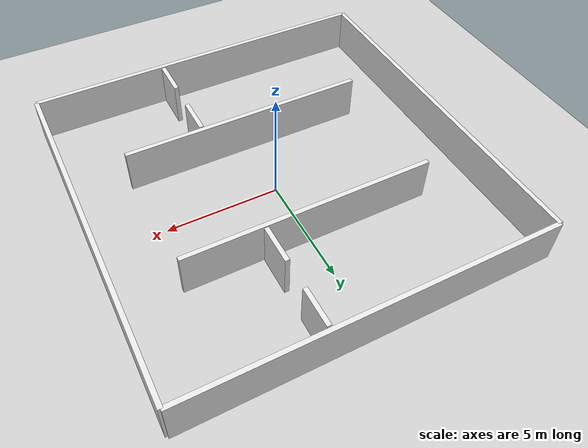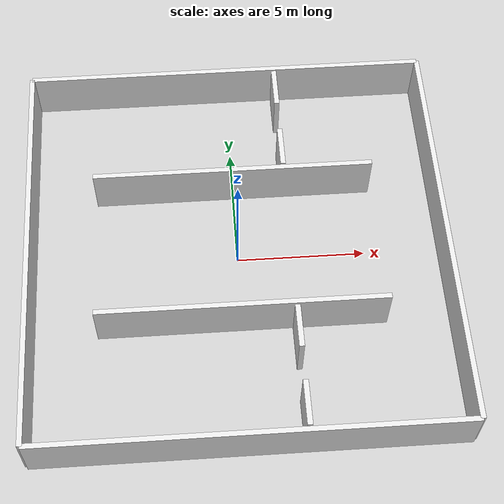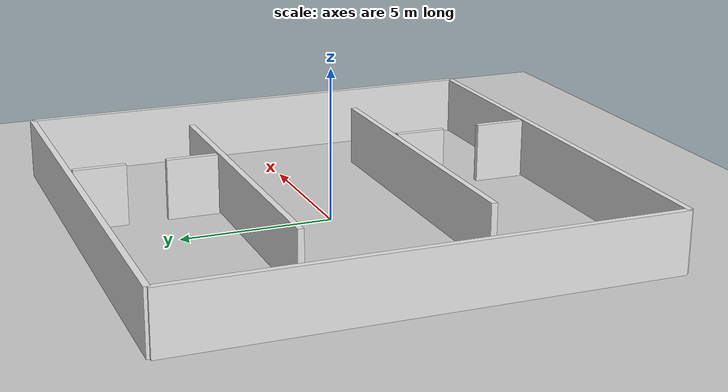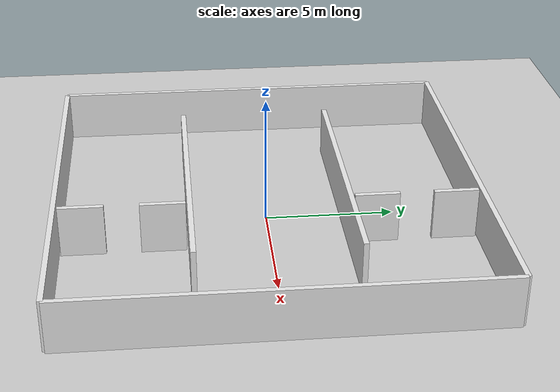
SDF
<sdf version="1.9">
 <world name="hospital">
  <plugin filename="gz-sim-physics-system" name="gz::sim::systems::Physics"/>
  <plugin filename="gz-sim-sensors-system" name="gz::sim::systems::Sensors">
   <render_engine>ogre2</render_engine>
  </plugin>
  <plugin filename="gz-sim-imu-system" name="gz::sim::systems::Imu"/>
  <plugin filename="gz-sim-scene-broadcaster-system" name="gz::sim::systems::SceneBroadcaster"/>
  <plugin filename="gz-sim-user-commands-system" name="gz::sim::systems::UserCommands"/>
  <physics name="default_physics" default="true" type="ode">
   <max_step_size>0.004</max_step_size>
   <real_time_factor>1</real_time_factor>
   <real_time_update_rate>250</real_time_update_rate>
   <ode>
    <solver><type>quick</type><iters>50</iters><sor>1.3</sor></solver>
    <constraints>
     <cfm>0.0</cfm>
     <erp>0.2</erp>
     <contact_max_correcting_vel>100.0</contact_max_correcting_vel>
     <contact_surface_layer>0.001</contact_surface_layer>
    </constraints>
   </ode>
  </physics>
  <light name="sun" type="directional">
   <pose>0 0 10 0 0 0</pose>
   <diffuse>1 1 1 1</diffuse>
   <specular>0.5 0.5 0.5 1</specular>
   <direction>-0.5 0.1 -0.9</direction>
  </light>
  <scene><ambient>0.6 0.6 0.6 1</ambient><background>0.7 0.7 0.7 1</background></scene>
  <model name="ground_plane">
   <static>true</static>
   <link name="link">
    <collision name="collision"><geometry><plane><normal>0 0 1</normal></plane></geometry></collision>
    <visual name="visual">
     <geometry><plane><normal>0 0 1</normal><size>100 100</size></plane></geometry>
     <material><ambient>0.8 0.8 0.8 1</ambient><diffuse>0.8 0.8 0.8 1</diffuse></material>
    </visual>
   </link>
  </model>
  <model name="wall_north">
   <static>true</static>
   <pose>8 0 1 0 0 0</pose>
   <link name="link">
    <collision name="col"><geometry><box><size>0.2 16 2</size></box></geometry></collision>
    <visual name="vis">
     <geometry><box><size>0.2 16 2</size></box></geometry>
     <material><ambient>0.9 0.9 0.9 1</ambient><diffuse>0.9 0.9 0.9 1</diffuse></material>
    </visual>
   </link>
  </model>
  <model name="wall_south">
   <static>true</static>
   <pose>-8 0 1 0 0 0</pose>
   <link name="link">
    <collision name="col"><geometry><box><size>0.2 16 2</size></box></geometry></collision>
    <visual name="vis">
     <geometry><box><size>0.2 16 2</size></box></geometry>
     <material><ambient>0.9 0.9 0.9 1</ambient><diffuse>0.9 0.9 0.9 1</diffuse></material>
    </visual>
   </link>
  </model>
  <model name="wall_east">
   <static>true</static>
   <pose>0 8 1 0 0 0</pose>
   <link name="link">
    <collision name="col"><geometry><box><size>16 0.2 2</size></box></geometry></collision>
    <visual name="vis">
     <geometry><box><size>16 0.2 2</size></box></geometry>
     <material><ambient>0.9 0.9 0.9 1</ambient><diffuse>0.9 0.9 0.9 1</diffuse></material>
    </visual>
   </link>
  </model>
  <model name="wall_west">
   <static>true</static>
   <pose>0 -8 1 0 0 0</pose>
   <link name="link">
    <collision name="col"><geometry><box><size>16 0.2 2</size></box></geometry></collision>
    <visual name="vis">
     <geometry><box><size>16 0.2 2</size></box></geometry>
     <material><ambient>0.9 0.9 0.9 1</ambient><diffuse>0.9 0.9 0.9 1</diffuse></material>
    </visual>
   </link>
  </model>
  <model name="corridor_wall_1">
   <static>true</static>
   <pose>0 3 1 0 0 0</pose>
   <link name="link">
    <collision name="col"><geometry><box><size>11.0 0.2 2</size></box></geometry></collision>
    <visual name="vis">
     <geometry><box><size>11.0 0.2 2</size></box></geometry>
     <material><ambient>0.9 0.9 0.9 1</ambient><diffuse>0.9 0.9 0.9 1</diffuse></material>
    </visual>
   </link>
  </model>
  <model name="corridor_wall_2">
   <static>true</static>
   <pose>0 -3 1 0 0 0</pose>
   <link name="link">
    <collision name="col"><geometry><box><size>11.0 0.2 2</size></box></geometry></collision>
    <visual name="vis">
     <geometry><box><size>11.0 0.2 2</size></box></geometry>
     <material><ambient>0.9 0.9 0.9 1</ambient><diffuse>0.9 0.9 0.9 1</diffuse></material>
    </visual>
   </link>
  </model>
  <model name="div_left_top_1">
   <static>true</static>
   <pose>2 4 1 0 0 0</pose>
   <link name="link">
    <collision name="col"><geometry><box><size>0.2 1.7 2</size></box></geometry></collision>
    <visual name="vis">
     <geometry><box><size>0.2 1.7 2</size></box></geometry>
     <material><ambient>0.9 0.9 0.9 1</ambient><diffuse>0.9 0.9 0.9 1</diffuse></material>
    </visual>
   </link>
  </model>
  <model name="div_left_top_2">
   <static>true</static>
   <pose>2 7 1 0 0 0</pose>
   <link name="link">
    <collision name="col"><geometry><box><size>0.2 1.7 2</size></box></geometry></collision>
    <visual name="vis">
     <geometry><box><size>0.2 1.7 2</size></box></geometry>
     <material><ambient>0.9 0.9 0.9 1</ambient><diffuse>0.9 0.9 0.9 1</diffuse></material>
    </visual>
   </link>
  </model>
  <model name="div_left_bot_1">
   <static>true</static>
   <pose>2 -4 1 0 0 0</pose>
   <link name="link">
    <collision name="col"><geometry><box><size>0.2 1.7 2</size></box></geometry></collision>
    <visual name="vis">
     <geometry><box><size>0.2 1.7 2</size></box></geometry>
     <material><ambient>0.9 0.9 0.9 1</ambient><diffuse>0.9 0.9 0.9 1</diffuse></material>
    </visual>
   </link>
  </model>
  <model name="div_left_bot_2">
   <static>true</static>
   <pose>2 -7 1 0 0 0</pose>
   <link name="link">
    <collision name="col"><geometry><box><size>0.2 1.7 2</size></box></geometry></collision>
    <visual name="vis">
     <geometry><box><size>0.2 1.7 2</size></box></geometry>
     <material><ambient>0.9 0.9 0.9 1</ambient><diffuse>0.9 0.9 0.9 1</diffuse></material>
    </visual>
   </link>
  </model>
 </world>
</sdf>
